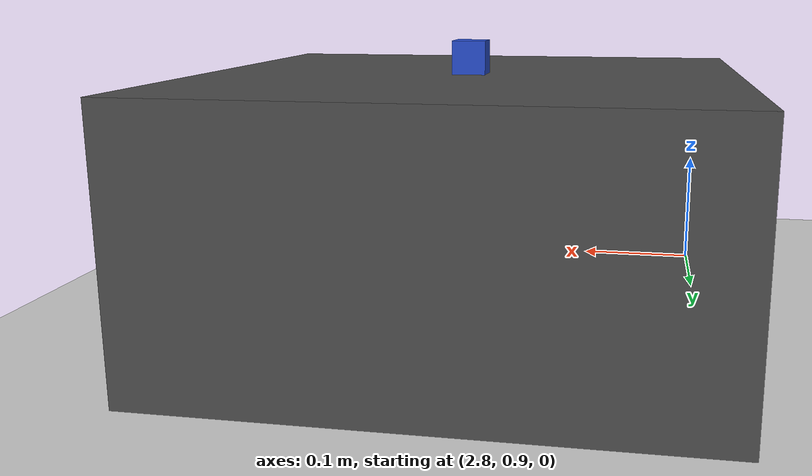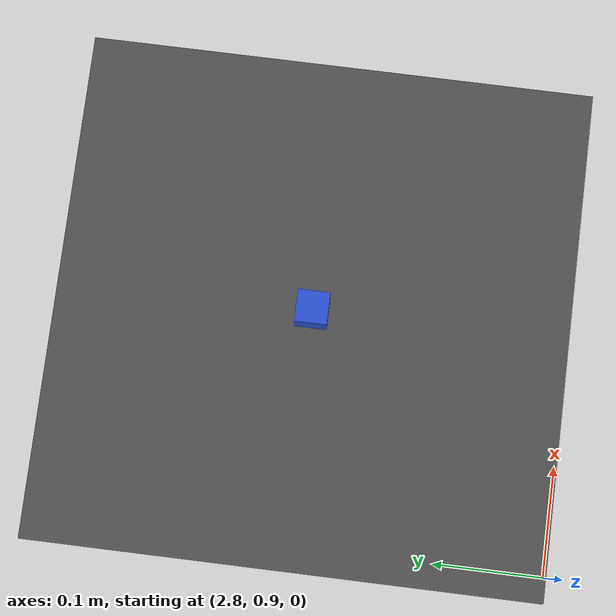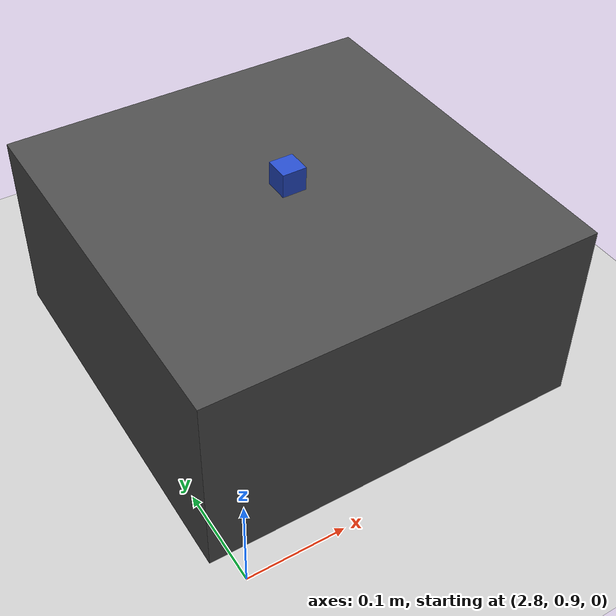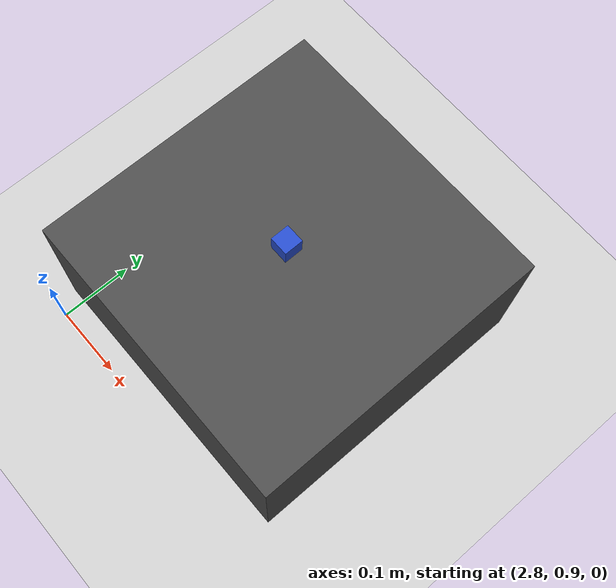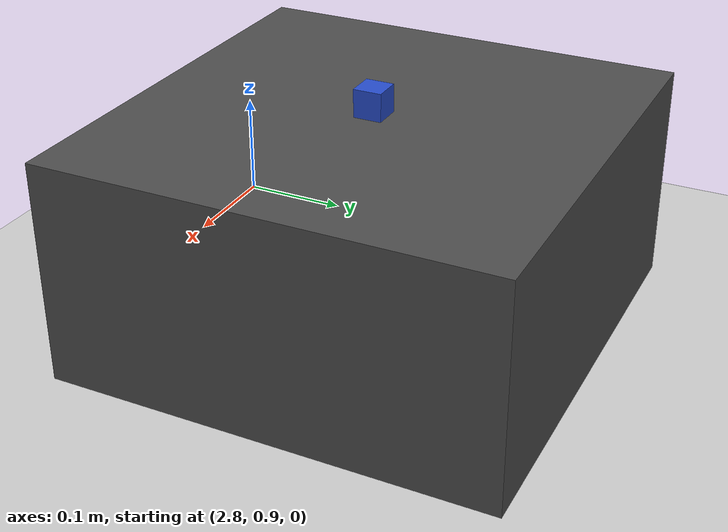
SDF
<?xml version="1.0" ?>
<sdf version="1.6">
  <world name="default">
    <include>
      <uri>model://sun</uri>
    </include>
    <include>
      <uri>model://ground_plane</uri>
    </include>

    <!-- 静态工作台：0.40 x 0.40 x 0.20 m，中心 z=0.10 → 顶面 z=0.20 -->
    <model name="grasp_table">
      <static>true</static>
      <pose>2.98 1.13 0.10 0 0 0</pose>
      <link name="table_link">
        <inertial>
          <mass>5.0</mass>
          <inertia>
            <ixx>0.05</ixx>
            <ixy>0</ixy>
            <ixz>0</ixz>
            <iyy>0.05</iyy>
            <iyz>0</iyz>
            <izz>0.05</izz>
          </inertia>
        </inertial>
        <collision name="collision">
          <geometry>
            <box>
              <size>0.40 0.40 0.20</size>
            </box>
          </geometry>
          <!-- 略软接触：臂/夹爪蹭台面时降低高频弹振（仍静态台，不改变尺寸） -->
          <surface>
            <contact>
              <ode>
                <kp>3.5e4</kp>
                <kd>8</kd>
              </ode>
            </contact>
            <friction>
              <ode>
                <mu>1.2</mu>
                <mu2>1.2</mu2>
              </ode>
            </friction>
          </surface>
        </collision>
        <visual name="visual">
          <geometry>
            <box>
              <size>0.40 0.40 0.20</size>
            </box>
          </geometry>
          <material>
            <script>
              <name>Gazebo/DarkGrey</name>
              <uri>file://media/materials/scripts/gazebo.material</uri>
            </script>
          </material>
        </visual>
      </link>
    </model>

    <!-- 可抓取目标：2.5cm 边长；质心 z = 台面 0.20 + 半高 0.0125 = 0.2125 -->
    <model name="grasp_target_cube">
      <pose>2.98 1.13 0.2125 0 0 0</pose>
      <link name="cube_link">
        <inertial>
          <mass>0.04</mass>
          <inertia>
            <ixx>4.17e-06</ixx>
            <ixy>0</ixy>
            <ixz>0</ixz>
            <iyy>4.17e-06</iyy>
            <iyz>0</iyz>
            <izz>4.17e-06</izz>
          </inertia>
        </inertial>
        <collision name="collision">
          <geometry>
            <box>
              <size>0.025 0.025 0.025</size>
            </box>
          </geometry>
          <surface>
            <!-- 软化接触：减轻伪吸附 set_model_state 与穿透修正对冲导致的抖动/Ogre 数值崩溃 -->
            <contact>
              <ode>
                <kp>8000</kp>
                <kd>35</kd>
                <max_vel>3.0</max_vel>
                <min_depth>0.002</min_depth>
              </ode>
            </contact>
            <friction>
              <ode>
                <mu>2.0</mu>
                <mu2>2.0</mu2>
              </ode>
            </friction>
          </surface>
        </collision>
        <visual name="visual">
          <geometry>
            <box>
              <size>0.025 0.025 0.025</size>
            </box>
          </geometry>
          <material>
            <script>
              <name>Gazebo/Blue</name>
              <uri>file://media/materials/scripts/gazebo.material</uri>
            </script>
          </material>
        </visual>
      </link>
    </model>
    <physics name="default_physics" type="ode">
      <max_step_size>0.005</max_step_size>
      <real_time_update_rate>200</real_time_update_rate>
      <ode>
        <solver>
          <type>quick</type>
          <!-- RTF 优先：20 次迭代与 myam_description 抓取场景一致，兼顾接触稳定与负载 -->
          <iters>20</iters>
          <sor>1.3</sor>
        </solver>
        <constraints>
          <!-- 再软化：大 cfm、低修正速度，减轻接触与力矩环“咬死” -->
          <cfm>0.001</cfm>
          <erp>0.2</erp>
          <contact_max_correcting_vel>80</contact_max_correcting_vel>
          <contact_surface_layer>0.002</contact_surface_layer>
        </constraints>
      </ode>
      <magnetic_field>6.0e-6 2.3e-5 -4.2e-5</magnetic_field>
    </physics>
  </world>
</sdf>
